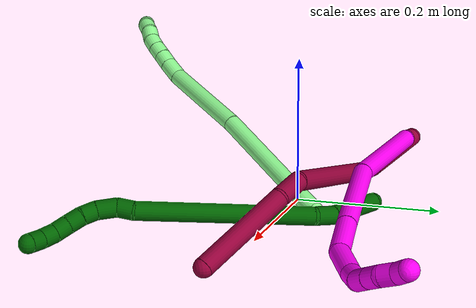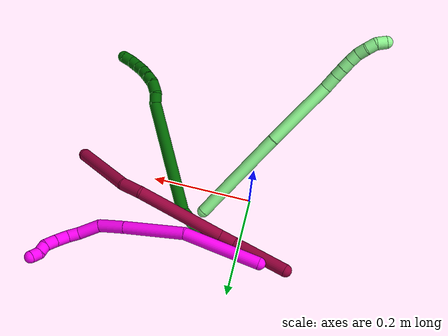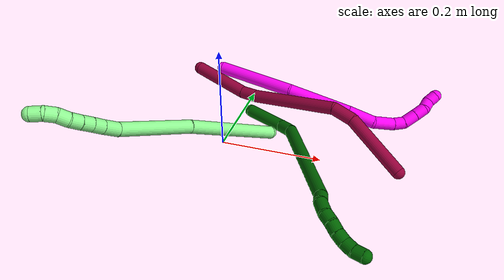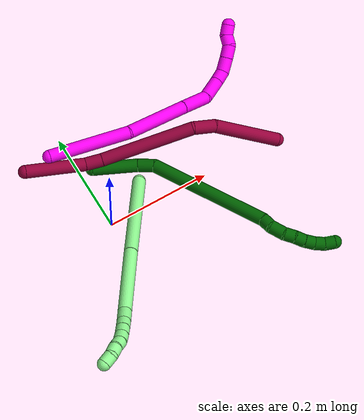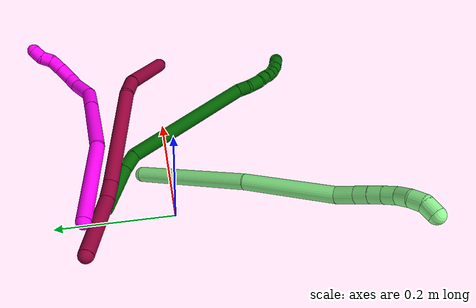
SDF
<sdf version="1.7">
 <world name="default">
  <model name="6">
   <static>0</static>
   <link name="6">
    <collision name="collision-cylinder-e_1_1_4">
     <pose>0.028912 -0.029695 0.010367 1.23491 0.74334 0.540035</pose>
     <geometry><cylinder><radius>0.0125</radius><length>0.085445</length></cylinder></geometry>
     <surface>
      <friction><ode><mu>1.16</mu><mu2>1.16</mu2><slip1>0</slip1><slip2>0</slip2></ode></friction>
      <contact><ode><kp>1e+06</kp><kd>1</kd><max_vel>0</max_vel><min_depth>0.001</min_depth></ode></contact>
     </surface>
    </collision>
    <visual name="visual-cylinder-e_1_1_4">
     <pose>0.028912 -0.029695 0.010367 1.23491 0.74334 0.540035</pose>
     <geometry><cylinder><radius>0.0125</radius><length>0.085445</length></cylinder></geometry>
     <material><ambient>0 0.392157 0.003922 1</ambient></material>
    </visual>
    <collision name="collision-cylinder-e_2_4_5">
     <pose>0.065459 -0.072611 0.025333 1.23605 0.499288 0.358627</pose>
     <geometry><cylinder><radius>0.0125</radius><length>0.031888</length></cylinder></geometry>
     <surface>
      <friction><ode><mu>1.16</mu><mu2>1.16</mu2><slip1>0</slip1><slip2>0</slip2></ode></friction>
      <contact><ode><kp>1e+06</kp><kd>1</kd><max_vel>0</max_vel><min_depth>0.001</min_depth></ode></contact>
     </surface>
    </collision>
    <visual name="visual-cylinder-e_2_4_5">
     <pose>0.065459 -0.072611 0.025333 1.23605 0.499288 0.358627</pose>
     <geometry><cylinder><radius>0.0125</radius><length>0.031888</length></cylinder></geometry>
     <material><ambient>0 0.392157 0.003922 1</ambient></material>
    </visual>
    <collision name="collision-cylinder-e_3_5_6">
     <pose>0.090828 -0.201267 0.036263 1.516 0.152217 0.144126</pose>
     <geometry><cylinder><radius>0.0125</radius><length>0.233922</length></cylinder></geometry>
     <surface>
      <friction><ode><mu>1.16</mu><mu2>1.16</mu2><slip1>0</slip1><slip2>0</slip2></ode></friction>
      <contact><ode><kp>1e+06</kp><kd>1</kd><max_vel>0</max_vel><min_depth>0.001</min_depth></ode></contact>
     </surface>
    </collision>
    <visual name="visual-cylinder-e_3_5_6">
     <pose>0.090828 -0.201267 0.036263 1.516 0.152217 0.144126</pose>
     <geometry><cylinder><radius>0.0125</radius><length>0.233922</length></cylinder></geometry>
     <material><ambient>0 0.392157 0.003922 1</ambient></material>
    </visual>
    <collision name="collision-cylinder-e_4_6_7">
     <pose>0.106775 -0.32728 0.04256 1.574 -0.167418 -0.167953</pose>
     <geometry><cylinder><radius>0.0125</radius><length>0.021457</length></cylinder></geometry>
     <surface>
      <friction><ode><mu>1.16</mu><mu2>1.16</mu2><slip1>0</slip1><slip2>0</slip2></ode></friction>
      <contact><ode><kp>1e+06</kp><kd>1</kd><max_vel>0</max_vel><min_depth>0.001</min_depth></ode></contact>
     </surface>
    </collision>
    <visual name="visual-cylinder-e_4_6_7">
     <pose>0.106775 -0.32728 0.04256 1.574 -0.167418 -0.167953</pose>
     <geometry><cylinder><radius>0.0125</radius><length>0.021457</length></cylinder></geometry>
     <material><ambient>0 0.392157 0.003922 1</ambient></material>
    </visual>
    <collision name="collision-cylinder-e_5_7_8">
     <pose>0.108468 -0.350918 0.041372 1.65896 0.259565 0.283214</pose>
     <geometry><cylinder><radius>0.0125</radius><length>0.027129</length></cylinder></geometry>
     <surface>
      <friction><ode><mu>1.16</mu><mu2>1.16</mu2><slip1>0</slip1><slip2>0</slip2></ode></friction>
      <contact><ode><kp>1e+06</kp><kd>1</kd><max_vel>0</max_vel><min_depth>0.001</min_depth></ode></contact>
     </surface>
    </collision>
    <visual name="visual-cylinder-e_5_7_8">
     <pose>0.108468 -0.350918 0.041372 1.65896 0.259565 0.283214</pose>
     <geometry><cylinder><radius>0.0125</radius><length>0.027129</length></cylinder></geometry>
     <material><ambient>0 0.392157 0.003922 1</ambient></material>
    </visual>
    <collision name="collision-cylinder-e_6_8_9">
     <pose>0.117432 -0.372316 0.039266 1.68441 0.578571 0.643849</pose>
     <geometry><cylinder><radius>0.0125</radius><length>0.020049</length></cylinder></geometry>
     <surface>
      <friction><ode><mu>1.16</mu><mu2>1.16</mu2><slip1>0</slip1><slip2>0</slip2></ode></friction>
      <contact><ode><kp>1e+06</kp><kd>1</kd><max_vel>0</max_vel><min_depth>0.001</min_depth></ode></contact>
     </surface>
    </collision>
    <visual name="visual-cylinder-e_6_8_9">
     <pose>0.117432 -0.372316 0.039266 1.68441 0.578571 0.643849</pose>
     <geometry><cylinder><radius>0.0125</radius><length>0.020049</length></cylinder></geometry>
     <material><ambient>0 0.392157 0.003922 1</ambient></material>
    </visual>
    <collision name="collision-cylinder-e_7_9_10">
     <pose>0.128812 -0.388331 0.035654 1.90445 0.627962 0.856045</pose>
     <geometry><cylinder><radius>0.0125</radius><length>0.020079</length></cylinder></geometry>
     <surface>
      <friction><ode><mu>1.16</mu><mu2>1.16</mu2><slip1>0</slip1><slip2>0</slip2></ode></friction>
      <contact><ode><kp>1e+06</kp><kd>1</kd><max_vel>0</max_vel><min_depth>0.001</min_depth></ode></contact>
     </surface>
    </collision>
    <visual name="visual-cylinder-e_7_9_10">
     <pose>0.128812 -0.388331 0.035654 1.90445 0.627962 0.856045</pose>
     <geometry><cylinder><radius>0.0125</radius><length>0.020079</length></cylinder></geometry>
     <material><ambient>0 0.392157 0.003922 1</ambient></material>
    </visual>
    <collision name="collision-cylinder-e_8_10_11">
     <pose>0.141558 -0.403118 0.031306 1.80373 0.752943 0.927438</pose>
     <geometry><cylinder><radius>0.0125</radius><length>0.020029</length></cylinder></geometry>
     <surface>
      <friction><ode><mu>1.16</mu><mu2>1.16</mu2><slip1>0</slip1><slip2>0</slip2></ode></friction>
      <contact><ode><kp>1e+06</kp><kd>1</kd><max_vel>0</max_vel><min_depth>0.001</min_depth></ode></contact>
     </surface>
    </collision>
    <visual name="visual-cylinder-e_8_10_11">
     <pose>0.141558 -0.403118 0.031306 1.80373 0.752943 0.927438</pose>
     <geometry><cylinder><radius>0.0125</radius><length>0.020029</length></cylinder></geometry>
     <material><ambient>0 0.392157 0.003922 1</ambient></material>
    </visual>
    <collision name="collision-cylinder-e_9_11_12">
     <pose>0.155327 -0.417439 0.029946 1.5255 0.764408 0.733559</pose>
     <geometry><cylinder><radius>0.0125</radius><length>0.02</length></cylinder></geometry>
     <surface>
      <friction><ode><mu>1.16</mu><mu2>1.16</mu2><slip1>0</slip1><slip2>0</slip2></ode></friction>
      <contact><ode><kp>1e+06</kp><kd>1</kd><max_vel>0</max_vel><min_depth>0.001</min_depth></ode></contact>
     </surface>
    </collision>
    <visual name="visual-cylinder-e_9_11_12">
     <pose>0.155327 -0.417439 0.029946 1.5255 0.764408 0.733559</pose>
     <geometry><cylinder><radius>0.0125</radius><length>0.02</length></cylinder></geometry>
     <material><ambient>0 0.392157 0.003922 1</ambient></material>
    </visual>
    <collision name="collision-cylinder-e_10_12_2">
     <pose>0.169655 -0.430792 0.032995 1.15378 0.834093 0.56137</pose>
     <geometry><cylinder><radius>0.0125</radius><length>0.020001</length></cylinder></geometry>
     <surface>
      <friction><ode><mu>1.16</mu><mu2>1.16</mu2><slip1>0</slip1><slip2>0</slip2></ode></friction>
      <contact><ode><kp>1e+06</kp><kd>1</kd><max_vel>0</max_vel><min_depth>0.001</min_depth></ode></contact>
     </surface>
    </collision>
    <visual name="visual-cylinder-e_10_12_2">
     <pose>0.169655 -0.430792 0.032995 1.15378 0.834093 0.56137</pose>
     <geometry><cylinder><radius>0.0125</radius><length>0.020001</length></cylinder></geometry>
     <material><ambient>0 0.392157 0.003922 1</ambient></material>
    </visual>
    <collision name="collision-sphere-2">
     <pose>0.177063 -0.436935 0.035716 0 -0 0</pose>
     <geometry><sphere><radius>0.0125</radius></sphere></geometry>
     <surface>
      <friction><ode><mu>1.16</mu><mu2>1.16</mu2><slip1>0</slip1><slip2>0</slip2></ode></friction>
      <contact><ode><kp>1e+06</kp><kd>1</kd><max_vel>0</max_vel><min_depth>0.001</min_depth></ode></contact>
     </surface>
    </collision>
    <visual name="visual-sphere-2">
     <pose>0.177063 -0.436935 0.035716 0 -0 0</pose>
     <geometry><sphere><radius>0.0125</radius></sphere></geometry>
     <material><ambient>0 0.392157 0.003922 1</ambient></material>
    </visual>
    <collision name="collision-sphere-12">
     <pose>0.162248 -0.424649 0.030273 0 -0 0</pose>
     <geometry><sphere><radius>0.0125</radius></sphere></geometry>
     <surface>
      <friction><ode><mu>1.16</mu><mu2>1.16</mu2><slip1>0</slip1><slip2>0</slip2></ode></friction>
      <contact><ode><kp>1e+06</kp><kd>1</kd><max_vel>0</max_vel><min_depth>0.001</min_depth></ode></contact>
     </surface>
    </collision>
    <visual name="visual-sphere-12">
     <pose>0.162248 -0.424649 0.030273 0 -0 0</pose>
     <geometry><sphere><radius>0.0125</radius></sphere></geometry>
     <material><ambient>0 0.392157 0.003922 1</ambient></material>
    </visual>
    <collision name="collision-sphere-11">
     <pose>0.148406 -0.410228 0.02962 0 -0 0</pose>
     <geometry><sphere><radius>0.0125</radius></sphere></geometry>
     <surface>
      <friction><ode><mu>1.16</mu><mu2>1.16</mu2><slip1>0</slip1><slip2>0</slip2></ode></friction>
      <contact><ode><kp>1e+06</kp><kd>1</kd><max_vel>0</max_vel><min_depth>0.001</min_depth></ode></contact>
     </surface>
    </collision>
    <visual name="visual-sphere-11">
     <pose>0.148406 -0.410228 0.02962 0 -0 0</pose>
     <geometry><sphere><radius>0.0125</radius></sphere></geometry>
     <material><ambient>0 0.392157 0.003922 1</ambient></material>
    </visual>
    <collision name="collision-sphere-10">
     <pose>0.13471 -0.396008 0.032993 0 -0 0</pose>
     <geometry><sphere><radius>0.0125</radius></sphere></geometry>
     <surface>
      <friction><ode><mu>1.16</mu><mu2>1.16</mu2><slip1>0</slip1><slip2>0</slip2></ode></friction>
      <contact><ode><kp>1e+06</kp><kd>1</kd><max_vel>0</max_vel><min_depth>0.001</min_depth></ode></contact>
     </surface>
    </collision>
    <visual name="visual-sphere-10">
     <pose>0.13471 -0.396008 0.032993 0 -0 0</pose>
     <geometry><sphere><radius>0.0125</radius></sphere></geometry>
     <material><ambient>0 0.392157 0.003922 1</ambient></material>
    </visual>
    <collision name="collision-sphere-9">
     <pose>0.122913 -0.380655 0.038315 0 -0 0</pose>
     <geometry><sphere><radius>0.0125</radius></sphere></geometry>
     <surface>
      <friction><ode><mu>1.16</mu><mu2>1.16</mu2><slip1>0</slip1><slip2>0</slip2></ode></friction>
      <contact><ode><kp>1e+06</kp><kd>1</kd><max_vel>0</max_vel><min_depth>0.001</min_depth></ode></contact>
     </surface>
    </collision>
    <visual name="visual-sphere-9">
     <pose>0.122913 -0.380655 0.038315 0 -0 0</pose>
     <geometry><sphere><radius>0.0125</radius></sphere></geometry>
     <material><ambient>0 0.392157 0.003922 1</ambient></material>
    </visual>
    <collision name="collision-sphere-4">
     <pose>0.057825 -0.05939 0.020734 0 -0 0</pose>
     <geometry><sphere><radius>0.0125</radius></sphere></geometry>
     <surface>
      <friction><ode><mu>1.16</mu><mu2>1.16</mu2><slip1>0</slip1><slip2>0</slip2></ode></friction>
      <contact><ode><kp>1e+06</kp><kd>1</kd><max_vel>0</max_vel><min_depth>0.001</min_depth></ode></contact>
     </surface>
    </collision>
    <visual name="visual-sphere-4">
     <pose>0.057825 -0.05939 0.020734 0 -0 0</pose>
     <geometry><sphere><radius>0.0125</radius></sphere></geometry>
     <material><ambient>0 0.392157 0.003922 1</ambient></material>
    </visual>
    <collision name="collision-sphere-1">
     <geometry><sphere><radius>0.0125</radius></sphere></geometry>
     <surface>
      <friction><ode><mu>1.16</mu><mu2>1.16</mu2><slip1>0</slip1><slip2>0</slip2></ode></friction>
      <contact><ode><kp>1e+06</kp><kd>1</kd><max_vel>0</max_vel><min_depth>0.001</min_depth></ode></contact>
     </surface>
    </collision>
    <visual name="visual-sphere-1">
     <geometry><sphere><radius>0.0125</radius></sphere></geometry>
     <material><ambient>0 0.392157 0.003922 1</ambient></material>
    </visual>
    <collision name="collision-sphere-8">
     <pose>0.11195 -0.363977 0.040218 0 -0 0</pose>
     <geometry><sphere><radius>0.0125</radius></sphere></geometry>
     <surface>
      <friction><ode><mu>1.16</mu><mu2>1.16</mu2><slip1>0</slip1><slip2>0</slip2></ode></friction>
      <contact><ode><kp>1e+06</kp><kd>1</kd><max_vel>0</max_vel><min_depth>0.001</min_depth></ode></contact>
     </surface>
    </collision>
    <visual name="visual-sphere-8">
     <pose>0.11195 -0.363977 0.040218 0 -0 0</pose>
     <geometry><sphere><radius>0.0125</radius></sphere></geometry>
     <material><ambient>0 0.392157 0.003922 1</ambient></material>
    </visual>
    <collision name="collision-sphere-5">
     <pose>0.073093 -0.085831 0.029931 0 -0 0</pose>
     <geometry><sphere><radius>0.0125</radius></sphere></geometry>
     <surface>
      <friction><ode><mu>1.16</mu><mu2>1.16</mu2><slip1>0</slip1><slip2>0</slip2></ode></friction>
      <contact><ode><kp>1e+06</kp><kd>1</kd><max_vel>0</max_vel><min_depth>0.001</min_depth></ode></contact>
     </surface>
    </collision>
    <visual name="visual-sphere-5">
     <pose>0.073093 -0.085831 0.029931 0 -0 0</pose>
     <geometry><sphere><radius>0.0125</radius></sphere></geometry>
     <material><ambient>0 0.392157 0.003922 1</ambient></material>
    </visual>
    <collision name="collision-sphere-6">
     <pose>0.108562 -0.316702 0.042594 0 -0 0</pose>
     <geometry><sphere><radius>0.0125</radius></sphere></geometry>
     <surface>
      <friction><ode><mu>1.16</mu><mu2>1.16</mu2><slip1>0</slip1><slip2>0</slip2></ode></friction>
      <contact><ode><kp>1e+06</kp><kd>1</kd><max_vel>0</max_vel><min_depth>0.001</min_depth></ode></contact>
     </surface>
    </collision>
    <visual name="visual-sphere-6">
     <pose>0.108562 -0.316702 0.042594 0 -0 0</pose>
     <geometry><sphere><radius>0.0125</radius></sphere></geometry>
     <material><ambient>0 0.392157 0.003922 1</ambient></material>
    </visual>
    <collision name="collision-sphere-7">
     <pose>0.104987 -0.337859 0.042526 0 -0 0</pose>
     <geometry><sphere><radius>0.0125</radius></sphere></geometry>
     <surface>
      <friction><ode><mu>1.16</mu><mu2>1.16</mu2><slip1>0</slip1><slip2>0</slip2></ode></friction>
      <contact><ode><kp>1e+06</kp><kd>1</kd><max_vel>0</max_vel><min_depth>0.001</min_depth></ode></contact>
     </surface>
    </collision>
    <visual name="visual-sphere-7">
     <pose>0.104987 -0.337859 0.042526 0 -0 0</pose>
     <geometry><sphere><radius>0.0125</radius></sphere></geometry>
     <material><ambient>0 0.392157 0.003922 1</ambient></material>
    </visual>
    <inertial>
     <pose>0.090628 -0.217555 0.031202 0 -0 0</pose>
     <mass>0.5</mass>
     <inertia>
      <ixx>0.001292</ixx>
      <ixy>0</ixy>
      <ixz>0</ixz>
      <iyy>0.000265</iyy>
      <iyz>0</iyz>
      <izz>0.000908</izz>
     </inertia>
    </inertial>
   </link>
   <pose>0.02257 0.112496 0.01225 -0.114021 0.447343 0.288063</pose>
  </model>
  <model name="8">
   <static>0</static>
   <link name="8">
    <collision name="collision-cylinder-e_1_1_4">
     <pose>0.033567 -0.006019 -0.046216 3.01208 0.624171 2.74488</pose>
     <geometry><cylinder><radius>0.0125</radius><length>0.114872</length></cylinder></geometry>
     <surface>
      <friction><ode><mu>1.16</mu><mu2>1.16</mu2><slip1>0</slip1><slip2>0</slip2></ode></friction>
      <contact><ode><kp>1e+06</kp><kd>1</kd><max_vel>0</max_vel><min_depth>0.001</min_depth></ode></contact>
     </surface>
    </collision>
    <visual name="visual-cylinder-e_1_1_4">
     <pose>0.033567 -0.006019 -0.046216 3.01208 0.624171 2.74488</pose>
     <geometry><cylinder><radius>0.0125</radius><length>0.114872</length></cylinder></geometry>
     <material><ambient>0.584314 0 0.227451 1</ambient></material>
    </visual>
    <collision name="collision-cylinder-e_2_4_5">
     <pose>0.076119 -0.017161 -0.104934 2.75272 0.58686 1.98639</pose>
     <geometry><cylinder><radius>0.0125</radius><length>0.032451</length></cylinder></geometry>
     <surface>
      <friction><ode><mu>1.16</mu><mu2>1.16</mu2><slip1>0</slip1><slip2>0</slip2></ode></friction>
      <contact><ode><kp>1e+06</kp><kd>1</kd><max_vel>0</max_vel><min_depth>0.001</min_depth></ode></contact>
     </surface>
    </collision>
    <visual name="visual-cylinder-e_2_4_5">
     <pose>0.076119 -0.017161 -0.104934 2.75272 0.58686 1.98639</pose>
     <geometry><cylinder><radius>0.0125</radius><length>0.032451</length></cylinder></geometry>
     <material><ambient>0.584314 0 0.227451 1</ambient></material>
    </visual>
    <collision name="collision-cylinder-e_3_5_6">
     <pose>0.130561 -0.061023 -0.183222 2.6094 0.537051 1.58033</pose>
     <geometry><cylinder><radius>0.0125</radius><length>0.177705</length></cylinder></geometry>
     <surface>
      <friction><ode><mu>1.16</mu><mu2>1.16</mu2><slip1>0</slip1><slip2>0</slip2></ode></friction>
      <contact><ode><kp>1e+06</kp><kd>1</kd><max_vel>0</max_vel><min_depth>0.001</min_depth></ode></contact>
     </surface>
    </collision>
    <visual name="visual-cylinder-e_3_5_6">
     <pose>0.130561 -0.061023 -0.183222 2.6094 0.537051 1.58033</pose>
     <geometry><cylinder><radius>0.0125</radius><length>0.177705</length></cylinder></geometry>
     <material><ambient>0.584314 0 0.227451 1</ambient></material>
    </visual>
    <collision name="collision-cylinder-e_4_6_7">
     <pose>0.189275 -0.100688 -0.265848 3.08663 0.666108 2.98302</pose>
     <geometry><cylinder><radius>0.0125</radius><length>0.042905</length></cylinder></geometry>
     <surface>
      <friction><ode><mu>1.16</mu><mu2>1.16</mu2><slip1>0</slip1><slip2>0</slip2></ode></friction>
      <contact><ode><kp>1e+06</kp><kd>1</kd><max_vel>0</max_vel><min_depth>0.001</min_depth></ode></contact>
     </surface>
    </collision>
    <visual name="visual-cylinder-e_4_6_7">
     <pose>0.189275 -0.100688 -0.265848 3.08663 0.666108 2.98302</pose>
     <geometry><cylinder><radius>0.0125</radius><length>0.042905</length></cylinder></geometry>
     <material><ambient>0.584314 0 0.227451 1</ambient></material>
    </visual>
    <collision name="collision-cylinder-e_5_7_2">
     <pose>0.234184 -0.087052 -0.338782 -2.88758 0.499913 -2.21402</pose>
     <geometry><cylinder><radius>0.0125</radius><length>0.132067</length></cylinder></geometry>
     <surface>
      <friction><ode><mu>1.16</mu><mu2>1.16</mu2><slip1>0</slip1><slip2>0</slip2></ode></friction>
      <contact><ode><kp>1e+06</kp><kd>1</kd><max_vel>0</max_vel><min_depth>0.001</min_depth></ode></contact>
     </surface>
    </collision>
    <visual name="visual-cylinder-e_5_7_2">
     <pose>0.234184 -0.087052 -0.338782 -2.88758 0.499913 -2.21402</pose>
     <geometry><cylinder><radius>0.0125</radius><length>0.132067</length></cylinder></geometry>
     <material><ambient>0.584314 0 0.227451 1</ambient></material>
    </visual>
    <collision name="collision-sphere-2">
     <pose>0.265837 -0.072489 -0.394875 0 -0 0</pose>
     <geometry><sphere><radius>0.0125</radius></sphere></geometry>
     <surface>
      <friction><ode><mu>1.16</mu><mu2>1.16</mu2><slip1>0</slip1><slip2>0</slip2></ode></friction>
      <contact><ode><kp>1e+06</kp><kd>1</kd><max_vel>0</max_vel><min_depth>0.001</min_depth></ode></contact>
     </surface>
    </collision>
    <visual name="visual-sphere-2">
     <pose>0.265837 -0.072489 -0.394875 0 -0 0</pose>
     <geometry><sphere><radius>0.0125</radius></sphere></geometry>
     <material><ambient>0.584314 0 0.227451 1</ambient></material>
    </visual>
    <collision name="collision-sphere-7">
     <pose>0.202531 -0.101615 -0.282689 0 -0 0</pose>
     <geometry><sphere><radius>0.0125</radius></sphere></geometry>
     <surface>
      <friction><ode><mu>1.16</mu><mu2>1.16</mu2><slip1>0</slip1><slip2>0</slip2></ode></friction>
      <contact><ode><kp>1e+06</kp><kd>1</kd><max_vel>0</max_vel><min_depth>0.001</min_depth></ode></contact>
     </surface>
    </collision>
    <visual name="visual-sphere-7">
     <pose>0.202531 -0.101615 -0.282689 0 -0 0</pose>
     <geometry><sphere><radius>0.0125</radius></sphere></geometry>
     <material><ambient>0.584314 0 0.227451 1</ambient></material>
    </visual>
    <collision name="collision-sphere-6">
     <pose>0.176019 -0.099762 -0.249007 0 -0 0</pose>
     <geometry><sphere><radius>0.0125</radius></sphere></geometry>
     <surface>
      <friction><ode><mu>1.16</mu><mu2>1.16</mu2><slip1>0</slip1><slip2>0</slip2></ode></friction>
      <contact><ode><kp>1e+06</kp><kd>1</kd><max_vel>0</max_vel><min_depth>0.001</min_depth></ode></contact>
     </surface>
    </collision>
    <visual name="visual-sphere-6">
     <pose>0.176019 -0.099762 -0.249007 0 -0 0</pose>
     <geometry><sphere><radius>0.0125</radius></sphere></geometry>
     <material><ambient>0.584314 0 0.227451 1</ambient></material>
    </visual>
    <collision name="collision-sphere-5">
     <pose>0.085104 -0.022284 -0.117436 0 -0 0</pose>
     <geometry><sphere><radius>0.0125</radius></sphere></geometry>
     <surface>
      <friction><ode><mu>1.16</mu><mu2>1.16</mu2><slip1>0</slip1><slip2>0</slip2></ode></friction>
      <contact><ode><kp>1e+06</kp><kd>1</kd><max_vel>0</max_vel><min_depth>0.001</min_depth></ode></contact>
     </surface>
    </collision>
    <visual name="visual-sphere-5">
     <pose>0.085104 -0.022284 -0.117436 0 -0 0</pose>
     <geometry><sphere><radius>0.0125</radius></sphere></geometry>
     <material><ambient>0.584314 0 0.227451 1</ambient></material>
    </visual>
    <collision name="collision-sphere-1">
     <geometry><sphere><radius>0.0125</radius></sphere></geometry>
     <surface>
      <friction><ode><mu>1.16</mu><mu2>1.16</mu2><slip1>0</slip1><slip2>0</slip2></ode></friction>
      <contact><ode><kp>1e+06</kp><kd>1</kd><max_vel>0</max_vel><min_depth>0.001</min_depth></ode></contact>
     </surface>
    </collision>
    <visual name="visual-sphere-1">
     <geometry><sphere><radius>0.0125</radius></sphere></geometry>
     <material><ambient>0.584314 0 0.227451 1</ambient></material>
    </visual>
    <collision name="collision-sphere-4">
     <pose>0.067134 -0.012039 -0.092432 0 -0 0</pose>
     <geometry><sphere><radius>0.0125</radius></sphere></geometry>
     <surface>
      <friction><ode><mu>1.16</mu><mu2>1.16</mu2><slip1>0</slip1><slip2>0</slip2></ode></friction>
      <contact><ode><kp>1e+06</kp><kd>1</kd><max_vel>0</max_vel><min_depth>0.001</min_depth></ode></contact>
     </surface>
    </collision>
    <visual name="visual-sphere-4">
     <pose>0.067134 -0.012039 -0.092432 0 -0 0</pose>
     <geometry><sphere><radius>0.0125</radius></sphere></geometry>
     <material><ambient>0.584314 0 0.227451 1</ambient></material>
    </visual>
    <inertial>
     <pose>0.137152 -0.055818 -0.194843 0 -0 0</pose>
     <mass>0.5</mass>
     <inertia>
      <ixx>0.000122</ixx>
      <ixy>0</ixy>
      <ixz>0</ixz>
      <iyy>0.000703</iyy>
      <iyz>0</iyz>
      <izz>-0.000273</izz>
     </inertia>
    </inertial>
   </link>
   <pose>-0.101196 0.141475 0.078827 -1.4852 0.389124 0.668435</pose>
  </model>
  <model name="10">
   <static>0</static>
   <link name="10">
    <collision name="collision-cylinder-e_1_1_4">
     <pose>0.003994 0.003229 -0.07831 -3.10038 0.050911 -1.78067</pose>
     <geometry><cylinder><radius>0.0125</radius><length>0.156957</length></cylinder></geometry>
     <surface>
      <friction><ode><mu>1.16</mu><mu2>1.16</mu2><slip1>0</slip1><slip2>0</slip2></ode></friction>
      <contact><ode><kp>1e+06</kp><kd>1</kd><max_vel>0</max_vel><min_depth>0.001</min_depth></ode></contact>
     </surface>
    </collision>
    <visual name="visual-cylinder-e_1_1_4">
     <pose>0.003994 0.003229 -0.07831 -3.10038 0.050911 -1.78067</pose>
     <geometry><cylinder><radius>0.0125</radius><length>0.156957</length></cylinder></geometry>
     <material><ambient>1 0 0.964706 1</ambient></material>
    </visual>
    <collision name="collision-cylinder-e_2_4_5">
     <pose>0.023727 0.022132 -0.215648 -2.88205 0.252237 -1.54195</pose>
     <geometry><cylinder><radius>0.0125</radius><length>0.126138</length></cylinder></geometry>
     <surface>
      <friction><ode><mu>1.16</mu><mu2>1.16</mu2><slip1>0</slip1><slip2>0</slip2></ode></friction>
      <contact><ode><kp>1e+06</kp><kd>1</kd><max_vel>0</max_vel><min_depth>0.001</min_depth></ode></contact>
     </surface>
    </collision>
    <visual name="visual-cylinder-e_2_4_5">
     <pose>0.023727 0.022132 -0.215648 -2.88205 0.252237 -1.54195</pose>
     <geometry><cylinder><radius>0.0125</radius><length>0.126138</length></cylinder></geometry>
     <material><ambient>1 0 0.964706 1</ambient></material>
    </visual>
    <collision name="collision-cylinder-e_3_5_6">
     <pose>0.046336 0.046265 -0.299943 -2.81851 0.252261 -1.32252</pose>
     <geometry><cylinder><radius>0.0125</radius><length>0.055033</length></cylinder></geometry>
     <surface>
      <friction><ode><mu>1.16</mu><mu2>1.16</mu2><slip1>0</slip1><slip2>0</slip2></ode></friction>
      <contact><ode><kp>1e+06</kp><kd>1</kd><max_vel>0</max_vel><min_depth>0.001</min_depth></ode></contact>
     </surface>
    </collision>
    <visual name="visual-cylinder-e_3_5_6">
     <pose>0.046336 0.046265 -0.299943 -2.81851 0.252261 -1.32252</pose>
     <geometry><cylinder><radius>0.0125</radius><length>0.055033</length></cylinder></geometry>
     <material><ambient>1 0 0.964706 1</ambient></material>
    </visual>
    <collision name="collision-cylinder-e_4_6_7">
     <pose>0.067861 0.061253 -0.341316 -2.75649 0.700666 -2.16131</pose>
     <geometry><cylinder><radius>0.0125</radius><length>0.045469</length></cylinder></geometry>
     <surface>
      <friction><ode><mu>1.16</mu><mu2>1.16</mu2><slip1>0</slip1><slip2>0</slip2></ode></friction>
      <contact><ode><kp>1e+06</kp><kd>1</kd><max_vel>0</max_vel><min_depth>0.001</min_depth></ode></contact>
     </surface>
    </collision>
    <visual name="visual-cylinder-e_4_6_7">
     <pose>0.067861 0.061253 -0.341316 -2.75649 0.700666 -2.16131</pose>
     <geometry><cylinder><radius>0.0125</radius><length>0.045469</length></cylinder></geometry>
     <material><ambient>1 0 0.964706 1</ambient></material>
    </visual>
    <collision name="collision-cylinder-e_5_7_8">
     <pose>0.090552 0.068307 -0.366059 -3.08076 0.748292 -2.98691</pose>
     <geometry><cylinder><radius>0.0125</radius><length>0.023615</length></cylinder></geometry>
     <surface>
      <friction><ode><mu>1.16</mu><mu2>1.16</mu2><slip1>0</slip1><slip2>0</slip2></ode></friction>
      <contact><ode><kp>1e+06</kp><kd>1</kd><max_vel>0</max_vel><min_depth>0.001</min_depth></ode></contact>
     </surface>
    </collision>
    <visual name="visual-cylinder-e_5_7_8">
     <pose>0.090552 0.068307 -0.366059 -3.08076 0.748292 -2.98691</pose>
     <geometry><cylinder><radius>0.0125</radius><length>0.023615</length></cylinder></geometry>
     <material><ambient>1 0 0.964706 1</ambient></material>
    </visual>
    <collision name="collision-cylinder-e_6_8_9">
     <pose>0.109715 0.064166 -0.38172 2.55508 0.922368 2.04953</pose>
     <geometry><cylinder><radius>0.0125</radius><length>0.027928</length></cylinder></geometry>
     <surface>
      <friction><ode><mu>1.16</mu><mu2>1.16</mu2><slip1>0</slip1><slip2>0</slip2></ode></friction>
      <contact><ode><kp>1e+06</kp><kd>1</kd><max_vel>0</max_vel><min_depth>0.001</min_depth></ode></contact>
     </surface>
    </collision>
    <visual name="visual-cylinder-e_6_8_9">
     <pose>0.109715 0.064166 -0.38172 2.55508 0.922368 2.04953</pose>
     <geometry><cylinder><radius>0.0125</radius><length>0.027928</length></cylinder></geometry>
     <material><ambient>1 0 0.964706 1</ambient></material>
    </visual>
    <collision name="collision-cylinder-e_7_9_10">
     <pose>0.130911 0.055559 -0.394472 2.53908 0.966358 2.07224</pose>
     <geometry><cylinder><radius>0.0125</radius><length>0.024468</length></cylinder></geometry>
     <surface>
      <friction><ode><mu>1.16</mu><mu2>1.16</mu2><slip1>0</slip1><slip2>0</slip2></ode></friction>
      <contact><ode><kp>1e+06</kp><kd>1</kd><max_vel>0</max_vel><min_depth>0.001</min_depth></ode></contact>
     </surface>
    </collision>
    <visual name="visual-cylinder-e_7_9_10">
     <pose>0.130911 0.055559 -0.394472 2.53908 0.966358 2.07224</pose>
     <geometry><cylinder><radius>0.0125</radius><length>0.024468</length></cylinder></geometry>
     <material><ambient>1 0 0.964706 1</ambient></material>
    </visual>
    <collision name="collision-cylinder-e_8_10_11">
     <pose>0.150846 0.04964 -0.400265 1.60373 1.3728 1.4052</pose>
     <geometry><cylinder><radius>0.0125</radius><length>0.02013</length></cylinder></geometry>
     <surface>
      <friction><ode><mu>1.16</mu><mu2>1.16</mu2><slip1>0</slip1><slip2>0</slip2></ode></friction>
      <contact><ode><kp>1e+06</kp><kd>1</kd><max_vel>0</max_vel><min_depth>0.001</min_depth></ode></contact>
     </surface>
    </collision>
    <visual name="visual-cylinder-e_8_10_11">
     <pose>0.150846 0.04964 -0.400265 1.60373 1.3728 1.4052</pose>
     <geometry><cylinder><radius>0.0125</radius><length>0.02013</length></cylinder></geometry>
     <material><ambient>1 0 0.964706 1</ambient></material>
    </visual>
    <collision name="collision-cylinder-e_9_11_2">
     <pose>0.169077 0.043858 -0.404602 2.41422 0.970925 1.89163</pose>
     <geometry><cylinder><radius>0.0125</radius><length>0.020263</length></cylinder></geometry>
     <surface>
      <friction><ode><mu>1.16</mu><mu2>1.16</mu2><slip1>0</slip1><slip2>0</slip2></ode></friction>
      <contact><ode><kp>1e+06</kp><kd>1</kd><max_vel>0</max_vel><min_depth>0.001</min_depth></ode></contact>
     </surface>
    </collision>
    <visual name="visual-cylinder-e_9_11_2">
     <pose>0.169077 0.043858 -0.404602 2.41422 0.970925 1.89163</pose>
     <geometry><cylinder><radius>0.0125</radius><length>0.020263</length></cylinder></geometry>
     <material><ambient>1 0 0.964706 1</ambient></material>
    </visual>
    <collision name="collision-sphere-2">
     <pose>0.17744 0.040055 -0.408875 0 -0 0</pose>
     <geometry><sphere><radius>0.0125</radius></sphere></geometry>
     <surface>
      <friction><ode><mu>1.16</mu><mu2>1.16</mu2><slip1>0</slip1><slip2>0</slip2></ode></friction>
      <contact><ode><kp>1e+06</kp><kd>1</kd><max_vel>0</max_vel><min_depth>0.001</min_depth></ode></contact>
     </surface>
    </collision>
    <visual name="visual-sphere-2">
     <pose>0.17744 0.040055 -0.408875 0 -0 0</pose>
     <geometry><sphere><radius>0.0125</radius></sphere></geometry>
     <material><ambient>1 0 0.964706 1</ambient></material>
    </visual>
    <collision name="collision-sphere-11">
     <pose>0.160714 0.047661 -0.40033 0 -0 0</pose>
     <geometry><sphere><radius>0.0125</radius></sphere></geometry>
     <surface>
      <friction><ode><mu>1.16</mu><mu2>1.16</mu2><slip1>0</slip1><slip2>0</slip2></ode></friction>
      <contact><ode><kp>1e+06</kp><kd>1</kd><max_vel>0</max_vel><min_depth>0.001</min_depth></ode></contact>
     </surface>
    </collision>
    <visual name="visual-sphere-11">
     <pose>0.160714 0.047661 -0.40033 0 -0 0</pose>
     <geometry><sphere><radius>0.0125</radius></sphere></geometry>
     <material><ambient>1 0 0.964706 1</ambient></material>
    </visual>
    <collision name="collision-sphere-10">
     <pose>0.140978 0.051619 -0.4002 0 -0 0</pose>
     <geometry><sphere><radius>0.0125</radius></sphere></geometry>
     <surface>
      <friction><ode><mu>1.16</mu><mu2>1.16</mu2><slip1>0</slip1><slip2>0</slip2></ode></friction>
      <contact><ode><kp>1e+06</kp><kd>1</kd><max_vel>0</max_vel><min_depth>0.001</min_depth></ode></contact>
     </surface>
    </collision>
    <visual name="visual-sphere-10">
     <pose>0.140978 0.051619 -0.4002 0 -0 0</pose>
     <geometry><sphere><radius>0.0125</radius></sphere></geometry>
     <material><ambient>1 0 0.964706 1</ambient></material>
    </visual>
    <collision name="collision-sphere-9">
     <pose>0.120845 0.059499 -0.388743 0 -0 0</pose>
     <geometry><sphere><radius>0.0125</radius></sphere></geometry>
     <surface>
      <friction><ode><mu>1.16</mu><mu2>1.16</mu2><slip1>0</slip1><slip2>0</slip2></ode></friction>
      <contact><ode><kp>1e+06</kp><kd>1</kd><max_vel>0</max_vel><min_depth>0.001</min_depth></ode></contact>
     </surface>
    </collision>
    <visual name="visual-sphere-9">
     <pose>0.120845 0.059499 -0.388743 0 -0 0</pose>
     <geometry><sphere><radius>0.0125</radius></sphere></geometry>
     <material><ambient>1 0 0.964706 1</ambient></material>
    </visual>
    <collision name="collision-sphere-4">
     <pose>0.007987 0.006458 -0.156621 0 -0 0</pose>
     <geometry><sphere><radius>0.0125</radius></sphere></geometry>
     <surface>
      <friction><ode><mu>1.16</mu><mu2>1.16</mu2><slip1>0</slip1><slip2>0</slip2></ode></friction>
      <contact><ode><kp>1e+06</kp><kd>1</kd><max_vel>0</max_vel><min_depth>0.001</min_depth></ode></contact>
     </surface>
    </collision>
    <visual name="visual-sphere-4">
     <pose>0.007987 0.006458 -0.156621 0 -0 0</pose>
     <geometry><sphere><radius>0.0125</radius></sphere></geometry>
     <material><ambient>1 0 0.964706 1</ambient></material>
    </visual>
    <collision name="collision-sphere-1">
     <geometry><sphere><radius>0.0125</radius></sphere></geometry>
     <surface>
      <friction><ode><mu>1.16</mu><mu2>1.16</mu2><slip1>0</slip1><slip2>0</slip2></ode></friction>
      <contact><ode><kp>1e+06</kp><kd>1</kd><max_vel>0</max_vel><min_depth>0.001</min_depth></ode></contact>
     </surface>
    </collision>
    <visual name="visual-sphere-1">
     <geometry><sphere><radius>0.0125</radius></sphere></geometry>
     <material><ambient>1 0 0.964706 1</ambient></material>
    </visual>
    <collision name="collision-sphere-8">
     <pose>0.098586 0.068834 -0.374696 0 -0 0</pose>
     <geometry><sphere><radius>0.0125</radius></sphere></geometry>
     <surface>
      <friction><ode><mu>1.16</mu><mu2>1.16</mu2><slip1>0</slip1><slip2>0</slip2></ode></friction>
      <contact><ode><kp>1e+06</kp><kd>1</kd><max_vel>0</max_vel><min_depth>0.001</min_depth></ode></contact>
     </surface>
    </collision>
    <visual name="visual-sphere-8">
     <pose>0.098586 0.068834 -0.374696 0 -0 0</pose>
     <geometry><sphere><radius>0.0125</radius></sphere></geometry>
     <material><ambient>1 0 0.964706 1</ambient></material>
    </visual>
    <collision name="collision-sphere-5">
     <pose>0.039468 0.037805 -0.274676 0 -0 0</pose>
     <geometry><sphere><radius>0.0125</radius></sphere></geometry>
     <surface>
      <friction><ode><mu>1.16</mu><mu2>1.16</mu2><slip1>0</slip1><slip2>0</slip2></ode></friction>
      <contact><ode><kp>1e+06</kp><kd>1</kd><max_vel>0</max_vel><min_depth>0.001</min_depth></ode></contact>
     </surface>
    </collision>
    <visual name="visual-sphere-5">
     <pose>0.039468 0.037805 -0.274676 0 -0 0</pose>
     <geometry><sphere><radius>0.0125</radius></sphere></geometry>
     <material><ambient>1 0 0.964706 1</ambient></material>
    </visual>
    <collision name="collision-sphere-6">
     <pose>0.053204 0.054725 -0.32521 0 -0 0</pose>
     <geometry><sphere><radius>0.0125</radius></sphere></geometry>
     <surface>
      <friction><ode><mu>1.16</mu><mu2>1.16</mu2><slip1>0</slip1><slip2>0</slip2></ode></friction>
      <contact><ode><kp>1e+06</kp><kd>1</kd><max_vel>0</max_vel><min_depth>0.001</min_depth></ode></contact>
     </surface>
    </collision>
    <visual name="visual-sphere-6">
     <pose>0.053204 0.054725 -0.32521 0 -0 0</pose>
     <geometry><sphere><radius>0.0125</radius></sphere></geometry>
     <material><ambient>1 0 0.964706 1</ambient></material>
    </visual>
    <collision name="collision-sphere-7">
     <pose>0.082519 0.067781 -0.357422 0 -0 0</pose>
     <geometry><sphere><radius>0.0125</radius></sphere></geometry>
     <surface>
      <friction><ode><mu>1.16</mu><mu2>1.16</mu2><slip1>0</slip1><slip2>0</slip2></ode></friction>
      <contact><ode><kp>1e+06</kp><kd>1</kd><max_vel>0</max_vel><min_depth>0.001</min_depth></ode></contact>
     </surface>
    </collision>
    <visual name="visual-sphere-7">
     <pose>0.082519 0.067781 -0.357422 0 -0 0</pose>
     <geometry><sphere><radius>0.0125</radius></sphere></geometry>
     <material><ambient>1 0 0.964706 1</ambient></material>
    </visual>
    <inertial>
     <pose>0.048247 0.030564 -0.233463 0 -0 0</pose>
     <mass>0.5</mass>
     <inertia>
      <ixx>-0.000558</ixx>
      <ixy>0</ixy>
      <ixz>0</ixz>
      <iyy>-0.000414</iyy>
      <iyz>0</iyz>
      <izz>-0.000172</izz>
     </inertia>
    </inertial>
   </link>
   <pose>-0.049046 0.142095 0.087415 -1.52146 -0.11825 1.34399</pose>
  </model>
  <model name="13">
   <static>0</static>
   <link name="13">
    <collision name="collision-cylinder-e_1_1_4">
     <pose>-0.027189 -0.058641 0.078983 0.638651 -0.269656 -0.089643</pose>
     <geometry><cylinder><radius>0.0125</radius><length>0.204121</length></cylinder></geometry>
     <surface>
      <friction><ode><mu>1.16</mu><mu2>1.16</mu2><slip1>0</slip1><slip2>0</slip2></ode></friction>
      <contact><ode><kp>1e+06</kp><kd>1</kd><max_vel>0</max_vel><min_depth>0.001</min_depth></ode></contact>
     </surface>
    </collision>
    <visual name="visual-cylinder-e_1_1_4">
     <pose>-0.027189 -0.058641 0.078983 0.638651 -0.269656 -0.089643</pose>
     <geometry><cylinder><radius>0.0125</radius><length>0.204121</length></cylinder></geometry>
     <material><ambient>0.564706 0.984314 0.572549 1</ambient></material>
    </visual>
    <collision name="collision-cylinder-e_2_4_5">
     <pose>-0.076399 -0.163528 0.209362 0.732703 -0.308344 -0.119108</pose>
     <geometry><cylinder><radius>0.0125</radius><length>0.145123</length></cylinder></geometry>
     <surface>
      <friction><ode><mu>1.16</mu><mu2>1.16</mu2><slip1>0</slip1><slip2>0</slip2></ode></friction>
      <contact><ode><kp>1e+06</kp><kd>1</kd><max_vel>0</max_vel><min_depth>0.001</min_depth></ode></contact>
     </surface>
    </collision>
    <visual name="visual-cylinder-e_2_4_5">
     <pose>-0.076399 -0.163528 0.209362 0.732703 -0.308344 -0.119108</pose>
     <geometry><cylinder><radius>0.0125</radius><length>0.145123</length></cylinder></geometry>
     <material><ambient>0.564706 0.984314 0.572549 1</ambient></material>
    </visual>
    <collision name="collision-cylinder-e_3_5_6">
     <pose>-0.101464 -0.217402 0.273077 0.554413 -0.207087 -0.059117</pose>
     <geometry><cylinder><radius>0.0125</radius><length>0.02961</length></cylinder></geometry>
     <surface>
      <friction><ode><mu>1.16</mu><mu2>1.16</mu2><slip1>0</slip1><slip2>0</slip2></ode></friction>
      <contact><ode><kp>1e+06</kp><kd>1</kd><max_vel>0</max_vel><min_depth>0.001</min_depth></ode></contact>
     </surface>
    </collision>
    <visual name="visual-cylinder-e_3_5_6">
     <pose>-0.101464 -0.217402 0.273077 0.554413 -0.207087 -0.059117</pose>
     <geometry><cylinder><radius>0.0125</radius><length>0.02961</length></cylinder></geometry>
     <material><ambient>0.564706 0.984314 0.572549 1</ambient></material>
    </visual>
    <collision name="collision-cylinder-e_4_6_7">
     <pose>-0.106721 -0.229918 0.294241 0.504886 -0.215568 -0.055807</pose>
     <geometry><cylinder><radius>0.0125</radius><length>0.020694</length></cylinder></geometry>
     <surface>
      <friction><ode><mu>1.16</mu><mu2>1.16</mu2><slip1>0</slip1><slip2>0</slip2></ode></friction>
      <contact><ode><kp>1e+06</kp><kd>1</kd><max_vel>0</max_vel><min_depth>0.001</min_depth></ode></contact>
     </surface>
    </collision>
    <visual name="visual-cylinder-e_4_6_7">
     <pose>-0.106721 -0.229918 0.294241 0.504886 -0.215568 -0.055807</pose>
     <geometry><cylinder><radius>0.0125</radius><length>0.020694</length></cylinder></geometry>
     <material><ambient>0.564706 0.984314 0.572549 1</ambient></material>
    </visual>
    <collision name="collision-cylinder-e_5_7_8">
     <pose>-0.111378 -0.239777 0.311523 0.532486 -0.244572 -0.067008</pose>
     <geometry><cylinder><radius>0.0125</radius><length>0.020182</length></cylinder></geometry>
     <surface>
      <friction><ode><mu>1.16</mu><mu2>1.16</mu2><slip1>0</slip1><slip2>0</slip2></ode></friction>
      <contact><ode><kp>1e+06</kp><kd>1</kd><max_vel>0</max_vel><min_depth>0.001</min_depth></ode></contact>
     </surface>
    </collision>
    <visual name="visual-cylinder-e_5_7_8">
     <pose>-0.111378 -0.239777 0.311523 0.532486 -0.244572 -0.067008</pose>
     <geometry><cylinder><radius>0.0125</radius><length>0.020182</length></cylinder></geometry>
     <material><ambient>0.564706 0.984314 0.572549 1</ambient></material>
    </visual>
    <collision name="collision-cylinder-e_6_8_9">
     <pose>-0.116683 -0.249271 0.32847 0.488467 -0.288643 -0.072404</pose>
     <geometry><cylinder><radius>0.0125</radius><length>0.02011</length></cylinder></geometry>
     <surface>
      <friction><ode><mu>1.16</mu><mu2>1.16</mu2><slip1>0</slip1><slip2>0</slip2></ode></friction>
      <contact><ode><kp>1e+06</kp><kd>1</kd><max_vel>0</max_vel><min_depth>0.001</min_depth></ode></contact>
     </surface>
    </collision>
    <visual name="visual-cylinder-e_6_8_9">
     <pose>-0.116683 -0.249271 0.32847 0.488467 -0.288643 -0.072404</pose>
     <geometry><cylinder><radius>0.0125</radius><length>0.02011</length></cylinder></geometry>
     <material><ambient>0.564706 0.984314 0.572549 1</ambient></material>
    </visual>
    <collision name="collision-cylinder-e_7_9_10">
     <pose>-0.123932 -0.25648 0.345647 0.300539 -0.450331 -0.069333</pose>
     <geometry><cylinder><radius>0.0125</radius><length>0.020154</length></cylinder></geometry>
     <surface>
      <friction><ode><mu>1.16</mu><mu2>1.16</mu2><slip1>0</slip1><slip2>0</slip2></ode></friction>
      <contact><ode><kp>1e+06</kp><kd>1</kd><max_vel>0</max_vel><min_depth>0.001</min_depth></ode></contact>
     </surface>
    </collision>
    <visual name="visual-cylinder-e_7_9_10">
     <pose>-0.123932 -0.25648 0.345647 0.300539 -0.450331 -0.069333</pose>
     <geometry><cylinder><radius>0.0125</radius><length>0.020154</length></cylinder></geometry>
     <material><ambient>0.564706 0.984314 0.572549 1</ambient></material>
    </visual>
    <collision name="collision-cylinder-e_8_10_11">
     <pose>-0.133623 -0.263732 0.361457 0.568676 -0.559105 -0.167404</pose>
     <geometry><cylinder><radius>0.0125</radius><length>0.020002</length></cylinder></geometry>
     <surface>
      <friction><ode><mu>1.16</mu><mu2>1.16</mu2><slip1>0</slip1><slip2>0</slip2></ode></friction>
      <contact><ode><kp>1e+06</kp><kd>1</kd><max_vel>0</max_vel><min_depth>0.001</min_depth></ode></contact>
     </surface>
    </collision>
    <visual name="visual-cylinder-e_8_10_11">
     <pose>-0.133623 -0.263732 0.361457 0.568676 -0.559105 -0.167404</pose>
     <geometry><cylinder><radius>0.0125</radius><length>0.020002</length></cylinder></geometry>
     <material><ambient>0.564706 0.984314 0.572549 1</ambient></material>
    </visual>
    <collision name="collision-cylinder-e_9_11_2">
     <pose>-0.147235 -0.272349 0.372423 0.814532 -0.980196 -0.452421</pose>
     <geometry><cylinder><radius>0.0125</radius><length>0.020005</length></cylinder></geometry>
     <surface>
      <friction><ode><mu>1.16</mu><mu2>1.16</mu2><slip1>0</slip1><slip2>0</slip2></ode></friction>
      <contact><ode><kp>1e+06</kp><kd>1</kd><max_vel>0</max_vel><min_depth>0.001</min_depth></ode></contact>
     </surface>
    </collision>
    <visual name="visual-cylinder-e_9_11_2">
     <pose>-0.147235 -0.272349 0.372423 0.814532 -0.980196 -0.452421</pose>
     <geometry><cylinder><radius>0.0125</radius><length>0.020005</length></cylinder></geometry>
     <material><ambient>0.564706 0.984314 0.572549 1</ambient></material>
    </visual>
    <collision name="collision-sphere-2">
     <pose>-0.155543 -0.2764 0.376245 0 -0 0</pose>
     <geometry><sphere><radius>0.0125</radius></sphere></geometry>
     <surface>
      <friction><ode><mu>1.16</mu><mu2>1.16</mu2><slip1>0</slip1><slip2>0</slip2></ode></friction>
      <contact><ode><kp>1e+06</kp><kd>1</kd><max_vel>0</max_vel><min_depth>0.001</min_depth></ode></contact>
     </surface>
    </collision>
    <visual name="visual-sphere-2">
     <pose>-0.155543 -0.2764 0.376245 0 -0 0</pose>
     <geometry><sphere><radius>0.0125</radius></sphere></geometry>
     <material><ambient>0.564706 0.984314 0.572549 1</ambient></material>
    </visual>
    <collision name="collision-sphere-11">
     <pose>-0.138928 -0.268297 0.368601 0 -0 0</pose>
     <geometry><sphere><radius>0.0125</radius></sphere></geometry>
     <surface>
      <friction><ode><mu>1.16</mu><mu2>1.16</mu2><slip1>0</slip1><slip2>0</slip2></ode></friction>
      <contact><ode><kp>1e+06</kp><kd>1</kd><max_vel>0</max_vel><min_depth>0.001</min_depth></ode></contact>
     </surface>
    </collision>
    <visual name="visual-sphere-11">
     <pose>-0.138928 -0.268297 0.368601 0 -0 0</pose>
     <geometry><sphere><radius>0.0125</radius></sphere></geometry>
     <material><ambient>0.564706 0.984314 0.572549 1</ambient></material>
    </visual>
    <collision name="collision-sphere-10">
     <pose>-0.128318 -0.259166 0.354313 0 -0 0</pose>
     <geometry><sphere><radius>0.0125</radius></sphere></geometry>
     <surface>
      <friction><ode><mu>1.16</mu><mu2>1.16</mu2><slip1>0</slip1><slip2>0</slip2></ode></friction>
      <contact><ode><kp>1e+06</kp><kd>1</kd><max_vel>0</max_vel><min_depth>0.001</min_depth></ode></contact>
     </surface>
    </collision>
    <visual name="visual-sphere-10">
     <pose>-0.128318 -0.259166 0.354313 0 -0 0</pose>
     <geometry><sphere><radius>0.0125</radius></sphere></geometry>
     <material><ambient>0.564706 0.984314 0.572549 1</ambient></material>
    </visual>
    <collision name="collision-sphere-9">
     <pose>-0.119546 -0.253794 0.336981 0 -0 0</pose>
     <geometry><sphere><radius>0.0125</radius></sphere></geometry>
     <surface>
      <friction><ode><mu>1.16</mu><mu2>1.16</mu2><slip1>0</slip1><slip2>0</slip2></ode></friction>
      <contact><ode><kp>1e+06</kp><kd>1</kd><max_vel>0</max_vel><min_depth>0.001</min_depth></ode></contact>
     </surface>
    </collision>
    <visual name="visual-sphere-9">
     <pose>-0.119546 -0.253794 0.336981 0 -0 0</pose>
     <geometry><sphere><radius>0.0125</radius></sphere></geometry>
     <material><ambient>0.564706 0.984314 0.572549 1</ambient></material>
    </visual>
    <collision name="collision-sphere-4">
     <pose>-0.054378 -0.117282 0.157966 0 -0 0</pose>
     <geometry><sphere><radius>0.0125</radius></sphere></geometry>
     <surface>
      <friction><ode><mu>1.16</mu><mu2>1.16</mu2><slip1>0</slip1><slip2>0</slip2></ode></friction>
      <contact><ode><kp>1e+06</kp><kd>1</kd><max_vel>0</max_vel><min_depth>0.001</min_depth></ode></contact>
     </surface>
    </collision>
    <visual name="visual-sphere-4">
     <pose>-0.054378 -0.117282 0.157966 0 -0 0</pose>
     <geometry><sphere><radius>0.0125</radius></sphere></geometry>
     <material><ambient>0.564706 0.984314 0.572549 1</ambient></material>
    </visual>
    <collision name="collision-sphere-1">
     <geometry><sphere><radius>0.0125</radius></sphere></geometry>
     <surface>
      <friction><ode><mu>1.16</mu><mu2>1.16</mu2><slip1>0</slip1><slip2>0</slip2></ode></friction>
      <contact><ode><kp>1e+06</kp><kd>1</kd><max_vel>0</max_vel><min_depth>0.001</min_depth></ode></contact>
     </surface>
    </collision>
    <visual name="visual-sphere-1">
     <geometry><sphere><radius>0.0125</radius></sphere></geometry>
     <material><ambient>0.564706 0.984314 0.572549 1</ambient></material>
    </visual>
    <collision name="collision-sphere-8">
     <pose>-0.113821 -0.244748 0.319958 0 -0 0</pose>
     <geometry><sphere><radius>0.0125</radius></sphere></geometry>
     <surface>
      <friction><ode><mu>1.16</mu><mu2>1.16</mu2><slip1>0</slip1><slip2>0</slip2></ode></friction>
      <contact><ode><kp>1e+06</kp><kd>1</kd><max_vel>0</max_vel><min_depth>0.001</min_depth></ode></contact>
     </surface>
    </collision>
    <visual name="visual-sphere-8">
     <pose>-0.113821 -0.244748 0.319958 0 -0 0</pose>
     <geometry><sphere><radius>0.0125</radius></sphere></geometry>
     <material><ambient>0.564706 0.984314 0.572549 1</ambient></material>
    </visual>
    <collision name="collision-sphere-5">
     <pose>-0.09842 -0.209774 0.260759 0 -0 0</pose>
     <geometry><sphere><radius>0.0125</radius></sphere></geometry>
     <surface>
      <friction><ode><mu>1.16</mu><mu2>1.16</mu2><slip1>0</slip1><slip2>0</slip2></ode></friction>
      <contact><ode><kp>1e+06</kp><kd>1</kd><max_vel>0</max_vel><min_depth>0.001</min_depth></ode></contact>
     </surface>
    </collision>
    <visual name="visual-sphere-5">
     <pose>-0.09842 -0.209774 0.260759 0 -0 0</pose>
     <geometry><sphere><radius>0.0125</radius></sphere></geometry>
     <material><ambient>0.564706 0.984314 0.572549 1</ambient></material>
    </visual>
    <collision name="collision-sphere-6">
     <pose>-0.104508 -0.225029 0.285395 0 -0 0</pose>
     <geometry><sphere><radius>0.0125</radius></sphere></geometry>
     <surface>
      <friction><ode><mu>1.16</mu><mu2>1.16</mu2><slip1>0</slip1><slip2>0</slip2></ode></friction>
      <contact><ode><kp>1e+06</kp><kd>1</kd><max_vel>0</max_vel><min_depth>0.001</min_depth></ode></contact>
     </surface>
    </collision>
    <visual name="visual-sphere-6">
     <pose>-0.104508 -0.225029 0.285395 0 -0 0</pose>
     <geometry><sphere><radius>0.0125</radius></sphere></geometry>
     <material><ambient>0.564706 0.984314 0.572549 1</ambient></material>
    </visual>
    <collision name="collision-sphere-7">
     <pose>-0.108934 -0.234807 0.303088 0 -0 0</pose>
     <geometry><sphere><radius>0.0125</radius></sphere></geometry>
     <surface>
      <friction><ode><mu>1.16</mu><mu2>1.16</mu2><slip1>0</slip1><slip2>0</slip2></ode></friction>
      <contact><ode><kp>1e+06</kp><kd>1</kd><max_vel>0</max_vel><min_depth>0.001</min_depth></ode></contact>
     </surface>
    </collision>
    <visual name="visual-sphere-7">
     <pose>-0.108934 -0.234807 0.303088 0 -0 0</pose>
     <geometry><sphere><radius>0.0125</radius></sphere></geometry>
     <material><ambient>0.564706 0.984314 0.572549 1</ambient></material>
    </visual>
    <inertial>
     <pose>-0.06912 -0.145282 0.190438 0 -0 0</pose>
     <mass>0.5</mass>
     <inertia>
      <ixx>0.000841</ixx>
      <ixy>0</ixy>
      <ixz>0</ixz>
      <iyy>0.000678</iyy>
      <iyz>0</iyz>
      <izz>0.000887</izz>
     </inertia>
    </inertial>
   </link>
   <pose>0.085 0.046444 0.011608 0.364461 -0.265401 -0.15041</pose>
  </model>
 </world>
</sdf>
